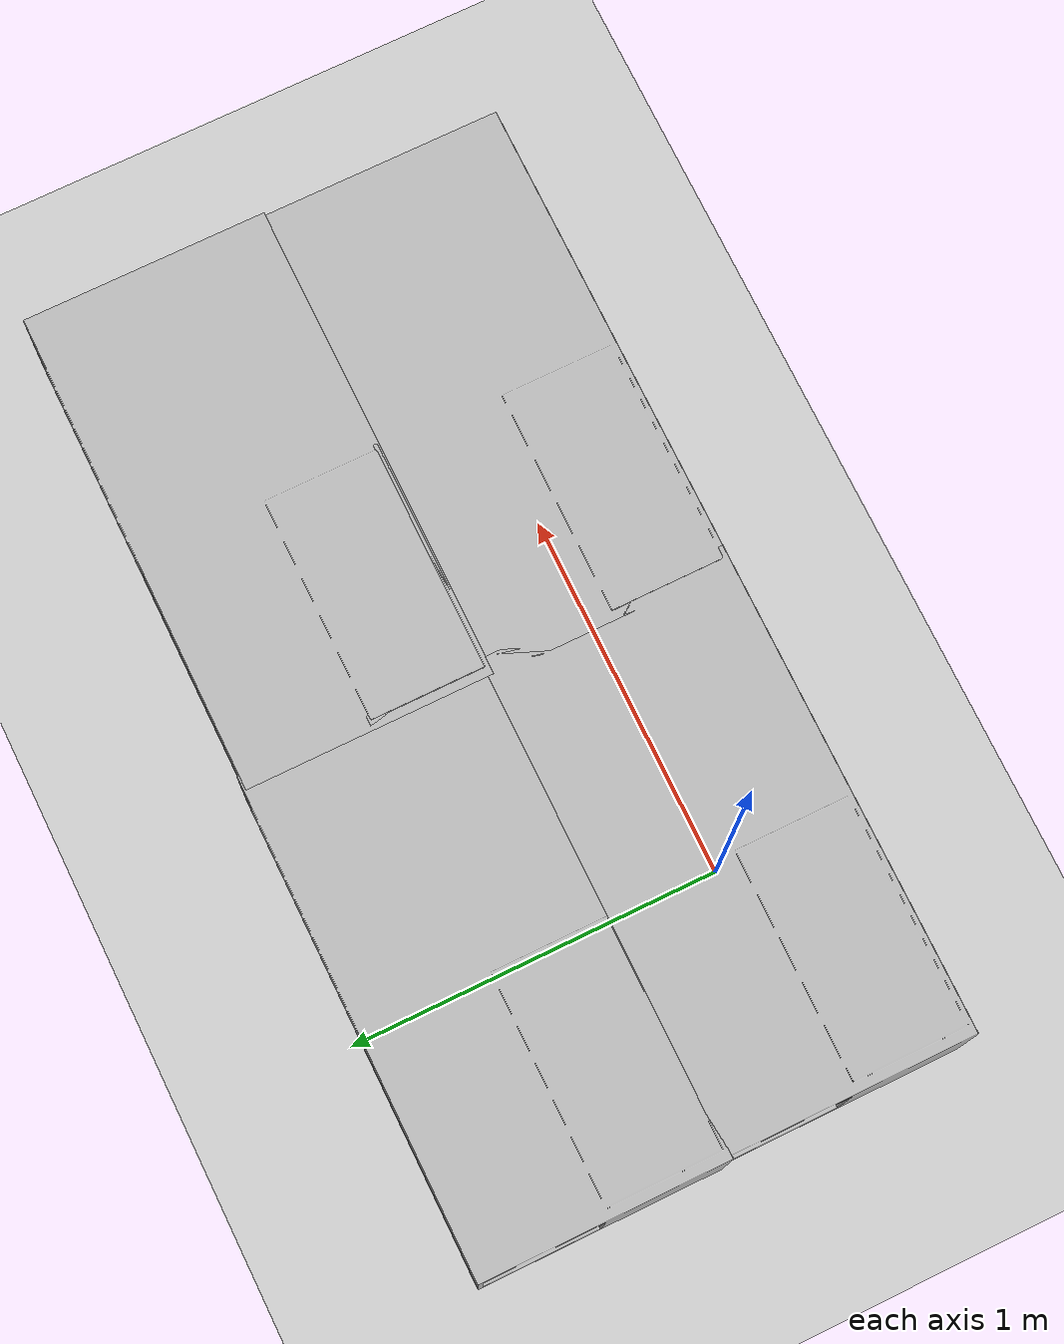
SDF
<sdf version='1.9'>
  <world name='pick_place_world'>
    <gravity>0 0 -9.8</gravity>
    <magnetic_field>6e-06 2.3e-05 -4.2e-05</magnetic_field>
    <atmosphere type='adiabatic'/>
    <physics type='ode'>
      <max_step_size>0.001</max_step_size>
      <real_time_factor>1</real_time_factor>
      <real_time_update_rate>1000</real_time_update_rate>
    </physics>
    <scene>
      <ambient>0.4 0.4 0.4 1</ambient>
      <background>0.7 0.7 0.7 1</background>
      <shadows>true</shadows>
    </scene>

    <!-- Third-person camera looking at the robot, boxes and crate from the
         front, from behind the boxes. Streamed to the web UI so the arm can be watched
         without a Gazebo GUI. -->
    <model name='scene_camera'>
      <static>true</static>
      <pose>1.55 1.85 1.55 0 0.484 -2.124</pose>
      <link name='link'>
        <sensor name='scene_camera' type='camera'>
          <always_on>true</always_on>
          <update_rate>15</update_rate>
          <topic>scene_camera/image</topic>
          <camera>
            <horizontal_fov>1.05</horizontal_fov>
            <image>
              <width>800</width>
              <height>600</height>
              <format>R8G8B8</format>
            </image>
            <clip>
              <near>0.05</near>
              <far>20</far>
            </clip>
          </camera>
        </sensor>
      </link>
    </model>

    <!-- PICK_PLACE_OBJECTS: randomized boxes, obstacles and drop crate are inserted here at launch -->

    <model name='CoffeeTable_1'>
      <static>true</static>
      <model name='aws_robomaker_residential_CoffeeTable_01'>
        <link name='link'>
          <inertial>
            <mass>21.699999999999999</mass>
            <inertia>
              <ixx>0.81374999999999975</ixx>
              <ixy>0</ixy>
              <ixz>0</ixz>
              <iyy>2.76675</iyy>
              <iyz>0</iyz>
              <izz>3.254</izz>
            </inertia>
          </inertial>
          <collision name='collision'>
            <geometry>
              <mesh>
                <uri>model://aws_robomaker_residential_CoffeeTable_01/meshes/aws_CoffeeTable_01_collision.DAE</uri>
                <scale>1 1 1</scale>
              </mesh>
            </geometry>
            <surface>
              <contact>
                <ode>
                  <max_vel>0.01</max_vel>
                </ode>
              </contact>
            </surface>
          </collision>
          <visual name='visual'>
            <geometry>
              <mesh>
                <uri>model://aws_robomaker_residential_CoffeeTable_01/meshes/aws_CoffeeTable_01_visual.DAE</uri>
              </mesh>
            </geometry>
            <meta>
              <layer>1</layer>
            </meta>
          </visual>
        </link>
        <static>true</static>
      </model>
      <pose>0 0 0.041983 0 -0 0</pose>
      <self_collide>false</self_collide>
    </model>
    <model name='CoffeeTable_2'>
      <static>true</static>
      <model name='aws_robomaker_residential_CoffeeTable_01'>
        <link name='link'>
          <inertial>
            <mass>21.699999999999999</mass>
            <inertia>
              <ixx>0.81374999999999975</ixx>
              <ixy>0</ixy>
              <ixz>0</ixz>
              <iyy>2.76675</iyy>
              <iyz>0</iyz>
              <izz>3.254</izz>
            </inertia>
          </inertial>
          <collision name='collision'>
            <geometry>
              <mesh>
                <uri>model://aws_robomaker_residential_CoffeeTable_01/meshes/aws_CoffeeTable_01_collision.DAE</uri>
                <scale>1 1 1</scale>
              </mesh>
            </geometry>
            <surface>
              <contact>
                <ode>
                  <max_vel>0.01</max_vel>
                </ode>
              </contact>
            </surface>
          </collision>
          <visual name='visual'>
            <geometry>
              <mesh>
                <uri>model://aws_robomaker_residential_CoffeeTable_01/meshes/aws_CoffeeTable_01_visual.DAE</uri>
              </mesh>
            </geometry>
            <meta>
              <layer>1</layer>
            </meta>
          </visual>
        </link>
        <static>true</static>
      </model>
      <pose>1.2577 0 0.041983 0 -0 0</pose>
      <self_collide>false</self_collide>
    </model>
    <model name='CoffeeTable_3'>
      <static>true</static>
      <model name='aws_robomaker_residential_CoffeeTable_01'>
        <link name='link'>
          <inertial>
            <mass>21.699999999999999</mass>
            <inertia>
              <ixx>0.81374999999999975</ixx>
              <ixy>0</ixy>
              <ixz>0</ixz>
              <iyy>2.76675</iyy>
              <iyz>0</iyz>
              <izz>3.254</izz>
            </inertia>
          </inertial>
          <collision name='collision'>
            <geometry>
              <mesh>
                <uri>model://aws_robomaker_residential_CoffeeTable_01/meshes/aws_CoffeeTable_01_collision.DAE</uri>
                <scale>1 1 1</scale>
              </mesh>
            </geometry>
            <surface>
              <contact>
                <ode>
                  <max_vel>0.01</max_vel>
                </ode>
              </contact>
            </surface>
          </collision>
          <visual name='visual'>
            <geometry>
              <mesh>
                <uri>model://aws_robomaker_residential_CoffeeTable_01/meshes/aws_CoffeeTable_01_visual.DAE</uri>
              </mesh>
            </geometry>
            <meta>
              <layer>1</layer>
            </meta>
          </visual>
        </link>
        <static>true</static>
      </model>
      <pose>1.26554 0.637963 0.041983 0 -0 0</pose>
      <self_collide>false</self_collide>
    </model>
    <model name='CoffeeTable_4'>
      <static>true</static>
      <model name='aws_robomaker_residential_CoffeeTable_01'>
        <link name='link'>
          <inertial>
            <mass>21.699999999999999</mass>
            <inertia>
              <ixx>0.81374999999999975</ixx>
              <ixy>0</ixy>
              <ixz>0</ixz>
              <iyy>2.76675</iyy>
              <iyz>0</iyz>
              <izz>3.254</izz>
            </inertia>
          </inertial>
          <collision name='collision'>
            <geometry>
              <mesh>
                <uri>model://aws_robomaker_residential_CoffeeTable_01/meshes/aws_CoffeeTable_01_collision.DAE</uri>
                <scale>1 1 1</scale>
              </mesh>
            </geometry>
            <surface>
              <contact>
                <ode>
                  <max_vel>0.01</max_vel>
                </ode>
              </contact>
            </surface>
          </collision>
          <visual name='visual'>
            <geometry>
              <mesh>
                <uri>model://aws_robomaker_residential_CoffeeTable_01/meshes/aws_CoffeeTable_01_visual.DAE</uri>
              </mesh>
            </geometry>
            <meta>
              <layer>1</layer>
            </meta>
          </visual>
        </link>
        <static>true</static>
      </model>
      <pose>-0.008642 0.643146 0.041983 0 -0 0</pose>
      <self_collide>false</self_collide>
    </model>
    <model name='ground_plane'>
      <static>true</static>
      <link name='link'>
        <collision name='collision'>
          <geometry>
            <plane>
              <normal>0 0 1</normal>
              <size>1 1</size>
            </plane>
          </geometry>
          <surface>
            <friction>
              <ode/>
            </friction>
            <bounce/>
            <contact/>
          </surface>
        </collision>
        <visual name='visual'>
          <geometry>
            <plane>
              <normal>0 0 1</normal>
              <size>100 100</size>
            </plane>
          </geometry>
          <material>
            <ambient>0.8 0.8 0.8 1</ambient>
            <diffuse>0.8 0.8 0.8 1</diffuse>
            <specular>0.8 0.8 0.8 1</specular>
          </material>
        </visual>
        <pose>0 0 0 0 -0 0</pose>
        <inertial>
          <pose>0 0 0 0 -0 0</pose>
          <mass>1</mass>
          <inertia>
            <ixx>1</ixx>
            <ixy>0</ixy>
            <ixz>0</ixz>
            <iyy>1</iyy>
            <iyz>0</iyz>
            <izz>1</izz>
          </inertia>
        </inertial>
        <enable_wind>false</enable_wind>
      </link>
      <pose>0 0 0 0 -0 0</pose>
      <self_collide>false</self_collide>
    </model>
    <light name='sun' type='directional'>
      <pose>0 0 10 0 -0 0</pose>
      <cast_shadows>true</cast_shadows>
      <intensity>1</intensity>
      <direction>-0.5 0.1 -0.9</direction>
      <diffuse>0.8 0.8 0.8 1</diffuse>
      <specular>0.2 0.2 0.2 1</specular>
      <attenuation>
        <range>1000</range>
        <linear>0.01</linear>
        <constant>0.90000000000000002</constant>
        <quadratic>0.001</quadratic>
      </attenuation>
      <spot>
        <inner_angle>0</inner_angle>
        <outer_angle>0</outer_angle>
        <falloff>0</falloff>
      </spot>
    </light>
  </world>
</sdf>
